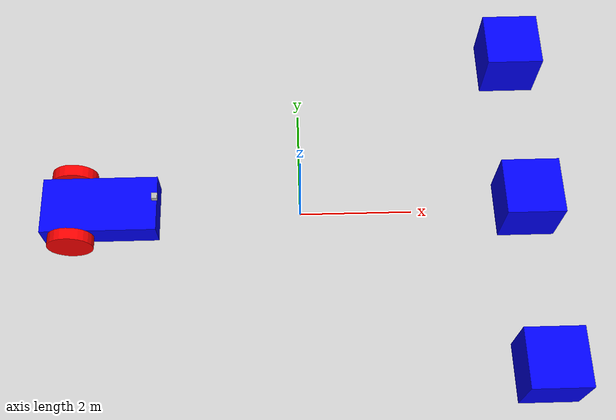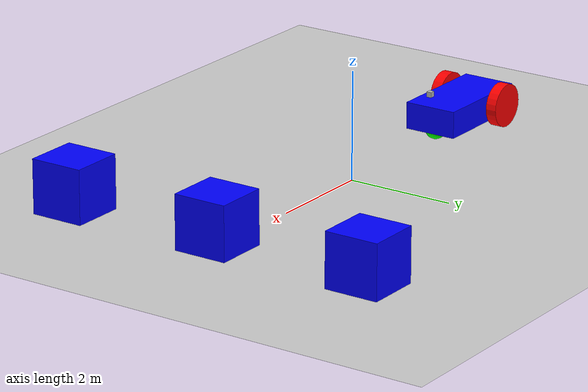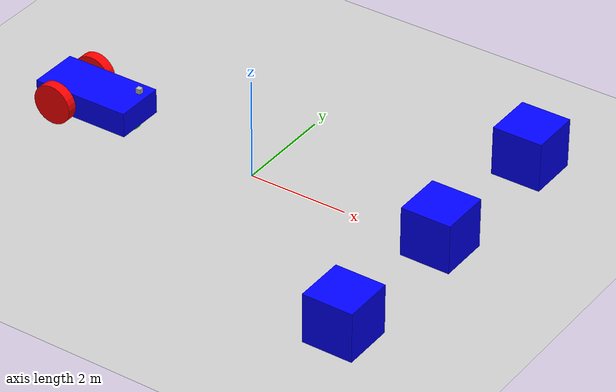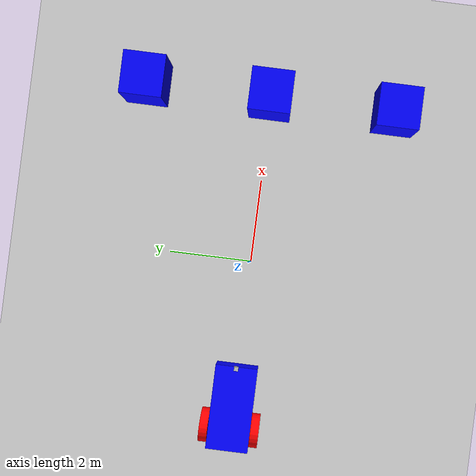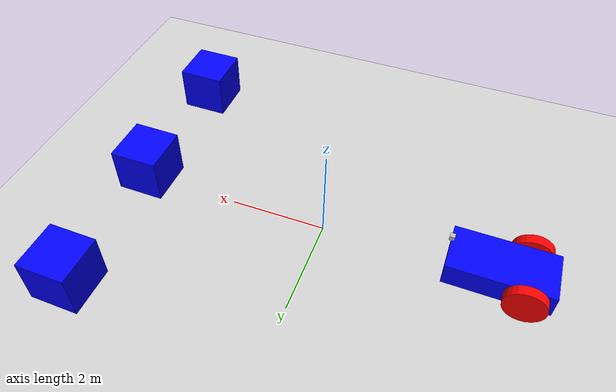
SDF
<sdf version="1.8">
 <world name="Moving_robot">
  <physics name="1ms" type="ignored">
   <max_step_size>0.001</max_step_size>
   <real_time_factor>1.0</real_time_factor>
  </physics>
  <plugin filename="gz-sim-physics-system" name="gz::sim::systems::Physics"/>
  <plugin filename="gz-sim-user-commands-system" name="gz::sim::systems::UserCommands"/>
  <plugin filename="gz-sim-scene-broadcaster-system" name="gz::sim::systems::SceneBroadcaster"/>
  <plugin filename="gz-sim-sensors-system" name="gz::sim::systems::Sensors">
   <render_engine>ogre2</render_engine>
  </plugin>
  <light type="directional" name="sun">
   <pose>0 0 10 0 0 0</pose>
   <diffuse>0.8 0.8 0.8 1</diffuse>
   <specular>0.2 0.2 0.2 1</specular>
   <attenuation>
    <range>1000</range>
    <constant>0.9</constant>
    <linear>0.01</linear>
    <quadratic>0.001</quadratic>
   </attenuation>
   <direction>-0.5 0.1 -0.9</direction>
  </light>
  <model name="ground_plane">
   <static>true</static>
   <link name="link">
    <collision name="collision"><geometry><plane><normal>0 0 1</normal></plane></geometry></collision>
    <visual name="visual">
     <geometry><plane><normal>0 0 1</normal><size>100 100</size></plane></geometry>
     <material>
      <ambient>0.8 0.8 0.8 1</ambient>
      <diffuse>0.8 0.8 0.8 1</diffuse>
      <specular>0.8 0.8 0.8 1</specular>
     </material>
    </visual>
   </link>
  </model>
  <model name="vehicle_blue" canonical_link="chassis">
   <pose relative_to="world">-4 0 0 0 0 0</pose>
   <link name="chassis">
    <pose relative_to="__model__">0.5 0 0.4 0 0 0</pose>
    <inertial>
     <mass>1.14395</mass>
     <inertia>
      <ixx>0.126164</ixx>
      <ixy>0</ixy>
      <ixz>0</ixz>
      <iyy>0.416519</iyy>
      <iyz>0</iyz>
      <izz>0.481014</izz>
     </inertia>
    </inertial>
    <visual name="visual">
     <geometry><box><size>2.0 1.0 0.5</size></box></geometry>
     <material>
      <ambient>0.0 0.0 1.0 1</ambient>
      <diffuse>0.0 0.0 1.0 1</diffuse>
      <specular>0.0 0.0 1.0 1</specular>
     </material>
    </visual>
    <collision name="collision"><geometry><box><size>2.0 1.0 0.5</size></box></geometry></collision>
   </link>
   <link name="left_wheel">
    <pose relative_to="chassis">-0.5 0.6 0 -1.5707 0 0</pose>
    <inertial>
     <mass>2</mass>
     <inertia><ixx>0.145833</ixx><ixy>0</ixy><ixz>0</ixz><iyy>0.145833</iyy><iyz>0</iyz><izz>0.125</izz></inertia>
    </inertial>
    <visual name="visual">
     <geometry><cylinder><radius>0.4</radius><length>0.2</length></cylinder></geometry>
     <material>
      <ambient>1.0 0.0 0.0 1</ambient>
      <diffuse>1.0 0.0 0.0 1</diffuse>
      <specular>1.0 0.0 0.0 1</specular>
     </material>
    </visual>
    <collision name="collision">
     <geometry><cylinder><radius>0.4</radius><length>0.2</length></cylinder></geometry>
    </collision>
   </link>
   <link name="right_wheel">
    <pose relative_to="chassis">-0.5 -0.6 0 -1.5707 0 0</pose>
    <inertial>
     <mass>1</mass>
     <inertia><ixx>0.145833</ixx><ixy>0</ixy><ixz>0</ixz><iyy>0.145833</iyy><iyz>0</iyz><izz>0.125</izz></inertia>
    </inertial>
    <visual name="visual">
     <geometry><cylinder><radius>0.4</radius><length>0.2</length></cylinder></geometry>
     <material>
      <ambient>1.0 0.0 0.0 1</ambient>
      <diffuse>1.0 0.0 0.0 1</diffuse>
      <specular>1.0 0.0 0.0 1</specular>
     </material>
    </visual>
    <collision name="collision">
     <geometry><cylinder><radius>0.4</radius><length>0.2</length></cylinder></geometry>
    </collision>
   </link>
   <frame name="caster_frame" attached_to="chassis"><pose>0.8 0 -0.2 0 0 0</pose></frame>
   <link name="caster">
    <pose relative_to="caster_frame"/>
    <inertial>
     <mass>1</mass>
     <inertia><ixx>0.1</ixx><ixy>0</ixy><ixz>0</ixz><iyy>0.1</iyy><iyz>0</iyz><izz>0.1</izz></inertia>
    </inertial>
    <visual name="visual">
     <geometry><sphere><radius>0.2</radius></sphere></geometry>
     <material>
      <ambient>0.0 1 0.0 1</ambient>
      <diffuse>0.0 1 0.0 1</diffuse>
      <specular>0.0 1 0.0 1</specular>
     </material>
    </visual>
    <collision name="collision"><geometry><sphere><radius>0.2</radius></sphere></geometry></collision>
   </link>
   <link name="camera">
    <pose relative_to="chassis">1 0 0.5 0 0 0</pose>
    <inertial>
     <mass>0.1</mass>
     <inertia><ixx>0.000166667</ixx><iyy>0.000166667</iyy><izz>0.000166667</izz></inertia>
    </inertial>
    <collision name="collision"><geometry><box><size>0.1 0.1 0.1</size></box></geometry></collision>
    <visual name="visual"><geometry><box><size>0.1 0.1 0.1</size></box></geometry></visual>
    <sensor name="full_2d" type="boundingbox_camera">
     <topic>boxes_full_2d</topic>
     <camera>
      <box_type>full_2d</box_type>
      <horizontal_fov>1.57</horizontal_fov>
      <image><width>800</width><height>600</height></image>
      <clip><near>0.01</near><far>1000</far></clip>
      <save enabled="true"><path>bounding_box_full_2d_data</path></save>
     </camera>
     <always_on>1</always_on>
     <update_rate>30</update_rate>
     <visualize>true</visualize>
    </sensor>
    <sensor name="3d" type="boundingbox_camera">
     <topic>boxes_3d</topic>
     <camera>
      <box_type>3d</box_type>
      <horizontal_fov>1.57</horizontal_fov>
      <image><width>800</width><height>600</height></image>
      <clip><near>0.01</near><far>1000</far></clip>
      <save enabled="true"><path>bounding_box_3d_data</path></save>
     </camera>
     <always_on>1</always_on>
     <update_rate>30</update_rate>
     <visualize>true</visualize>
    </sensor>
    <sensor name="camera_depth" type="depth">
     <camera name="depth">
      <horizontal_fov>1.047</horizontal_fov>
      <image><width>320</width><height>240</height></image>
      <clip><near>0.01</near><far>1000</far></clip>
     </camera>
     <always_on>1</always_on>
     <update_rate>30</update_rate>
     <visualize>1</visualize>
    </sensor>
   </link>
   <joint name="left_wheel_joint" type="revolute">
    <pose relative_to="left_wheel"/>
    <parent>chassis</parent>
    <child>left_wheel</child>
    <axis>
     <xyz expressed_in="__model__">0 1 0</xyz>
     <limit><lower>-1.79769e+308</lower><upper>1.79769e+308</upper></limit>
    </axis>
   </joint>
   <joint name="right_wheel_joint" type="revolute">
    <pose relative_to="right_wheel"/>
    <parent>chassis</parent>
    <child>right_wheel</child>
    <axis>
     <xyz expressed_in="__model__">0 1 0</xyz>
     <limit><lower>-1.79769e+308</lower><upper>1.79769e+308</upper></limit>
    </axis>
   </joint>
   <joint name="caster_wheel" type="ball"><parent>chassis</parent><child>caster</child></joint>
   <joint name="boundingbox_camera_joint" type="fixed"><parent>chassis</parent><child>camera</child></joint>
   <plugin filename="libgz-sim-diff-drive-system.so" name="gz::sim::systems::DiffDrive">
    <left_joint>left_wheel_joint</left_joint>
    <right_joint>right_wheel_joint</right_joint>
    <wheel_separation>1.2</wheel_separation>
    <wheel_radius>0.4</wheel_radius>
    <odom_publish_frequency>1</odom_publish_frequency>
    <topic>cmd_vel</topic>
   </plugin>
  </model>
  <model name="box1">
   <pose>4 -3 0.5 0 0 0</pose>
   <link name="box_link">
    <inertial>
     <inertia><ixx>1</ixx><ixy>0</ixy><ixz>0</ixz><iyy>1</iyy><iyz>0</iyz><izz>1</izz></inertia>
     <mass>1.0</mass>
    </inertial>
    <collision name="box_collision"><geometry><box><size>1 1 1</size></box></geometry></collision>
    <visual name="box_visual">
     <geometry><box><size>1 1 1</size></box></geometry>
     <material><ambient>0 0 0.5 1</ambient><diffuse>0 0 1 1</diffuse><specular>0 0 0.3 1</specular></material>
     <plugin filename="gz-sim-label-system" name="gz::sim::systems::Label"><label>10</label></plugin>
    </visual>
   </link>
  </model>
  <model name="box2">
   <pose>4 0 0.5 0 0 0</pose>
   <link name="box_link">
    <inertial>
     <inertia><ixx>1</ixx><ixy>0</ixy><ixz>0</ixz><iyy>1</iyy><iyz>0</iyz><izz>1</izz></inertia>
     <mass>1.0</mass>
    </inertial>
    <collision name="box_collision"><geometry><box><size>1 1 1</size></box></geometry></collision>
    <visual name="box_visual">
     <geometry><box><size>1 1 1</size></box></geometry>
     <material><ambient>0 0 0.5 1</ambient><diffuse>0 0 1 1</diffuse><specular>0 0 0.3 1</specular></material>
     <plugin filename="gz-sim-label-system" name="gz::sim::systems::Label"><label>20</label></plugin>
    </visual>
   </link>
  </model>
  <model name="box3">
   <pose>4 3 0.5 0 0 0</pose>
   <link name="box_link">
    <inertial>
     <inertia><ixx>1</ixx><ixy>0</ixy><ixz>0</ixz><iyy>1</iyy><iyz>0</iyz><izz>1</izz></inertia>
     <mass>1.0</mass>
    </inertial>
    <collision name="box_collision"><geometry><box><size>1 1 1</size></box></geometry></collision>
    <visual name="box_visual">
     <geometry><box><size>1 1 1</size></box></geometry>
     <material><ambient>0 0 0.5 1</ambient><diffuse>0 0 1 1</diffuse><specular>0 0 0.3 1</specular></material>
     <plugin filename="gz-sim-label-system" name="gz::sim::systems::Label"><label>30</label></plugin>
    </visual>
   </link>
  </model>
  <plugin filename="gz-sim-triggered-publisher-system" name="gz::sim::systems::TriggeredPublisher">
   <input type="gz.msgs.Int32" topic="/keyboard/keypress"><match field="data">16777234</match></input>
   <output type="gz.msgs.Twist" topic="/cmd_vel">linear: {x: 0.0}, angular: {z: 0.5}</output>
  </plugin>
  <plugin filename="gz-sim-triggered-publisher-system" name="gz::sim::systems::TriggeredPublisher">
   <input type="gz.msgs.Int32" topic="/keyboard/keypress"><match field="data">16777235</match></input>
   <output type="gz.msgs.Twist" topic="/cmd_vel">linear: {x: 0.5}, angular: {z: 0.0}</output>
  </plugin>
  <plugin filename="gz-sim-triggered-publisher-system" name="gz::sim::systems::TriggeredPublisher">
   <input type="gz.msgs.Int32" topic="/keyboard/keypress"><match field="data">16777236</match></input>
   <output type="gz.msgs.Twist" topic="/cmd_vel">linear: {x: 0.0}, angular: {z: -0.5}</output>
  </plugin>
  <plugin filename="gz-sim-triggered-publisher-system" name="gz::sim::systems::TriggeredPublisher">
   <input type="gz.msgs.Int32" topic="/keyboard/keypress"><match field="data">16777237</match></input>
   <output type="gz.msgs.Twist" topic="/cmd_vel">linear: {x: -0.5}, angular: {z: 0.0}</output>
  </plugin>
 </world>
</sdf>
